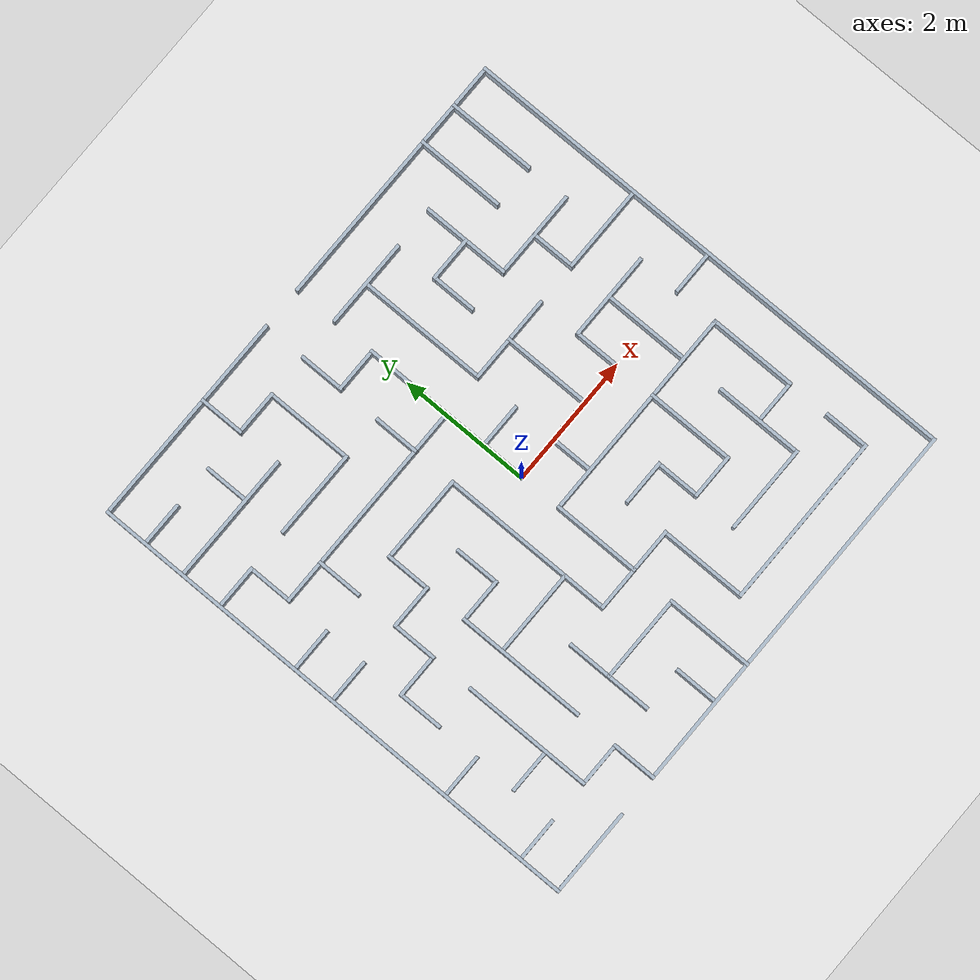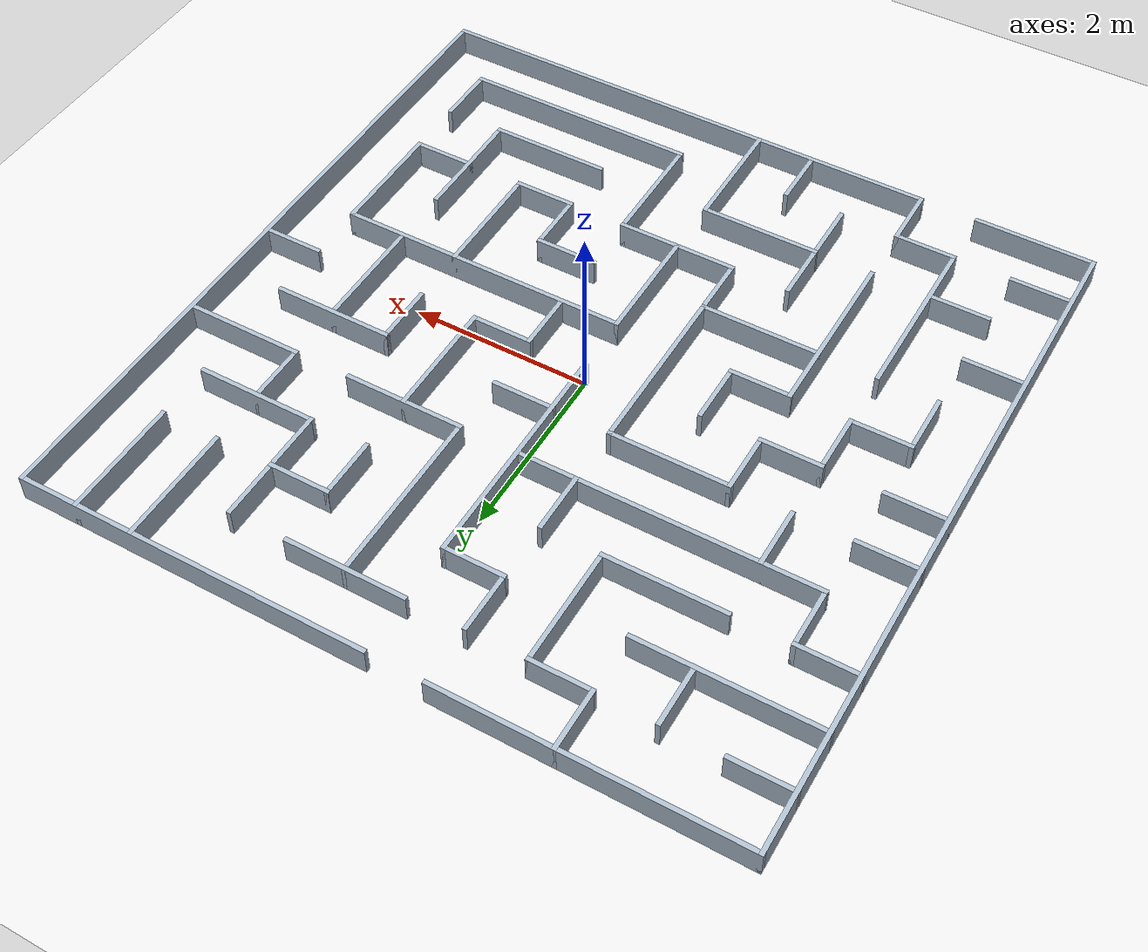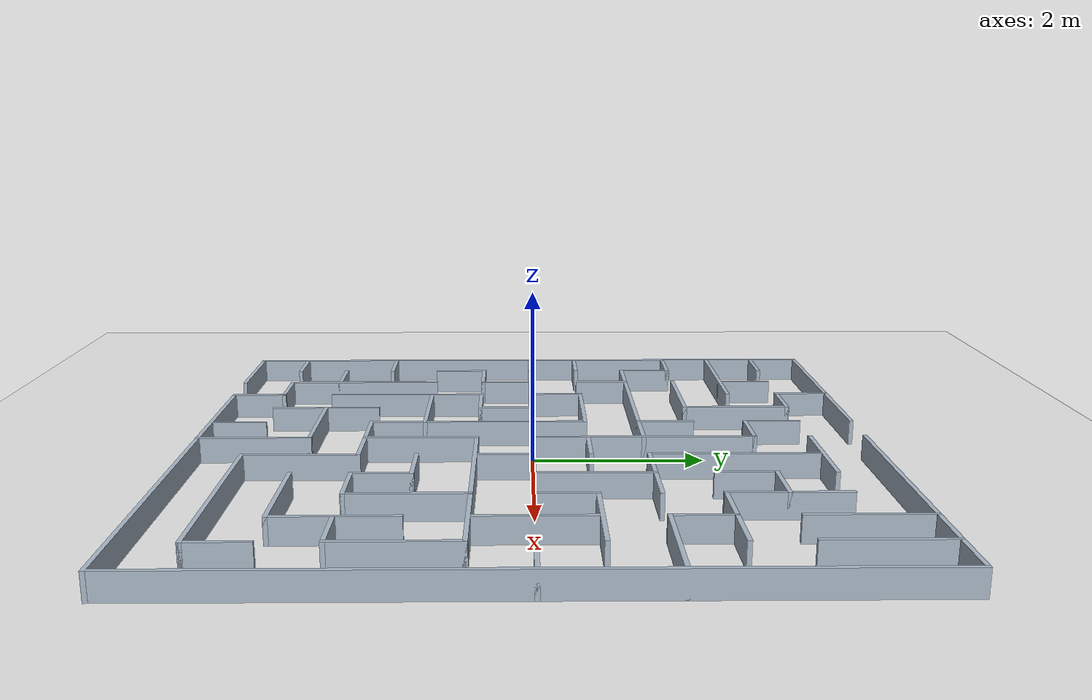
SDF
<sdf version="1.7">
  <world name="default">
    <gui fullscreen="0">
      <camera name="user_camera">
        <pose>0 -9.0 6.5 0 0.625 1.5708</pose>
        <view_controller>orbit</view_controller>
      </camera>
    </gui>
    <spherical_coordinates>
      <surface_model>EARTH_WGS84</surface_model>
      <latitude_deg>0</latitude_deg>
      <longitude_deg>0</longitude_deg>
      <elevation>0</elevation>
      <heading_deg>0</heading_deg>
    </spherical_coordinates>
    <scene>
      <ambient>0.55 0.55 0.55 1</ambient>
      <background>0.75 0.82 0.90 1</background>
      <shadows>1</shadows>
    </scene>
    <light name="sun" type="directional">
      <cast_shadows>1</cast_shadows>
      <pose>0 0 20 0 0 0</pose>
      <diffuse>0.9 0.9 0.9 1</diffuse>
      <specular>0.2 0.2 0.2 1</specular>
      <attenuation>
        <range>100</range>
        <constant>0.9</constant>
        <linear>0.01</linear>
        <quadratic>0.001</quadratic>
      </attenuation>
      <direction>-0.4 0.2 -0.9</direction>
    </light>
    <model name="ground_plane">
      <static>1</static>
      <link name="link">
        <collision name="collision">
          <geometry>
            <plane>
              <normal>0 0 1</normal>
              <size>100 100</size>
            </plane>
          </geometry>
        </collision>
        <visual name="visual">
          <geometry>
            <plane>
              <normal>0 0 1</normal>
              <size>100 100</size>
            </plane>
          </geometry>
          <material>
            <ambient>0.80 0.80 0.80 1</ambient>
            <diffuse>0.92 0.92 0.92 1</diffuse>
          </material>
        </visual>
      </link>
    </model>
    <model name="maze">
      <static>1</static>
      <link name="h_00_00">
        <pose>-2.275000 3.900000 0 0 0 0.000000</pose>
        <collision name="collision">
          <pose>0 0 0.150000 0 0 0</pose>
          <geometry>
            <box>
              <size>3.300000 0.050000 0.300000</size>
            </box>
          </geometry>
        </collision>
        <visual name="visual">
          <pose>0 0 0.150000 0 0 0</pose>
          <geometry>
            <box>
              <size>3.300000 0.050000 0.300000</size>
            </box>
          </geometry>
          <material>
            <ambient>0.50 0.56 0.63 1</ambient>
            <diffuse>0.68 0.74 0.80 1</diffuse>
            <specular>0.05 0.05 0.05 1</specular>
          </material>
        </visual>
      </link>
      <link name="h_00_01">
        <pose>1.950000 3.900000 0 0 0 0.000000</pose>
        <collision name="collision">
          <pose>0 0 0.150000 0 0 0</pose>
          <geometry>
            <box>
              <size>3.950000 0.050000 0.300000</size>
            </box>
          </geometry>
        </collision>
        <visual name="visual">
          <pose>0 0 0.150050 0 0 0</pose>
          <geometry>
            <box>
              <size>3.950000 0.050000 0.300100</size>
            </box>
          </geometry>
          <material>
            <ambient>0.50 0.56 0.63 1</ambient>
            <diffuse>0.68 0.74 0.80 1</diffuse>
            <specular>0.05 0.05 0.05 1</specular>
          </material>
        </visual>
      </link>
      <link name="h_01_00">
        <pose>-3.575000 3.250000 0 0 0 0.000000</pose>
        <collision name="collision">
          <pose>0 0 0.150000 0 0 0</pose>
          <geometry>
            <box>
              <size>0.700000 0.050000 0.300000</size>
            </box>
          </geometry>
        </collision>
        <visual name="visual">
          <pose>0 0 0.150100 0 0 0</pose>
          <geometry>
            <box>
              <size>0.700000 0.050000 0.300200</size>
            </box>
          </geometry>
          <material>
            <ambient>0.50 0.56 0.63 1</ambient>
            <diffuse>0.68 0.74 0.80 1</diffuse>
            <specular>0.05 0.05 0.05 1</specular>
          </material>
        </visual>
      </link>
      <link name="h_01_01">
        <pose>-1.625000 3.250000 0 0 0 0.000000</pose>
        <collision name="collision">
          <pose>0 0 0.150000 0 0 0</pose>
          <geometry>
            <box>
              <size>0.700000 0.050000 0.300000</size>
            </box>
          </geometry>
        </collision>
        <visual name="visual">
          <pose>0 0 0.150150 0 0 0</pose>
          <geometry>
            <box>
              <size>0.700000 0.050000 0.300300</size>
            </box>
          </geometry>
          <material>
            <ambient>0.50 0.56 0.63 1</ambient>
            <diffuse>0.68 0.74 0.80 1</diffuse>
            <specular>0.05 0.05 0.05 1</specular>
          </material>
        </visual>
      </link>
      <link name="h_01_02">
        <pose>0.650000 3.250000 0 0 0 0.000000</pose>
        <collision name="collision">
          <pose>0 0 0.150000 0 0 0</pose>
          <geometry>
            <box>
              <size>1.350000 0.050000 0.300000</size>
            </box>
          </geometry>
        </collision>
        <visual name="visual">
          <pose>0 0 0.150200 0 0 0</pose>
          <geometry>
            <box>
              <size>1.350000 0.050000 0.300400</size>
            </box>
          </geometry>
          <material>
            <ambient>0.50 0.56 0.63 1</ambient>
            <diffuse>0.68 0.74 0.80 1</diffuse>
            <specular>0.05 0.05 0.05 1</specular>
          </material>
        </visual>
      </link>
      <link name="h_02_00">
        <pose>-2.925000 2.600000 0 0 0 0.000000</pose>
        <collision name="collision">
          <pose>0 0 0.150000 0 0 0</pose>
          <geometry>
            <box>
              <size>2.000000 0.050000 0.300000</size>
            </box>
          </geometry>
        </collision>
        <visual name="visual">
          <pose>0 0 0.150250 0 0 0</pose>
          <geometry>
            <box>
              <size>2.000000 0.050000 0.300500</size>
            </box>
          </geometry>
          <material>
            <ambient>0.50 0.56 0.63 1</ambient>
            <diffuse>0.68 0.74 0.80 1</diffuse>
            <specular>0.05 0.05 0.05 1</specular>
          </material>
        </visual>
      </link>
      <link name="h_02_01">
        <pose>-0.325000 2.600000 0 0 0 0.000000</pose>
        <collision name="collision">
          <pose>0 0 0.150000 0 0 0</pose>
          <geometry>
            <box>
              <size>0.700000 0.050000 0.300000</size>
            </box>
          </geometry>
        </collision>
        <visual name="visual">
          <pose>0 0 0.150300 0 0 0</pose>
          <geometry>
            <box>
              <size>0.700000 0.050000 0.300600</size>
            </box>
          </geometry>
          <material>
            <ambient>0.50 0.56 0.63 1</ambient>
            <diffuse>0.68 0.74 0.80 1</diffuse>
            <specular>0.05 0.05 0.05 1</specular>
          </material>
        </visual>
      </link>
      <link name="h_02_02">
        <pose>1.625000 2.600000 0 0 0 0.000000</pose>
        <collision name="collision">
          <pose>0 0 0.150000 0 0 0</pose>
          <geometry>
            <box>
              <size>0.700000 0.050000 0.300000</size>
            </box>
          </geometry>
        </collision>
        <visual name="visual">
          <pose>0 0 0.150350 0 0 0</pose>
          <geometry>
            <box>
              <size>0.700000 0.050000 0.300700</size>
            </box>
          </geometry>
          <material>
            <ambient>0.50 0.56 0.63 1</ambient>
            <diffuse>0.68 0.74 0.80 1</diffuse>
            <specular>0.05 0.05 0.05 1</specular>
          </material>
        </visual>
      </link>
      <link name="h_03_00">
        <pose>-3.575000 1.950000 0 0 0 0.000000</pose>
        <collision name="collision">
          <pose>0 0 0.150000 0 0 0</pose>
          <geometry>
            <box>
              <size>0.700000 0.050000 0.300000</size>
            </box>
          </geometry>
        </collision>
        <visual name="visual">
          <pose>0 0 0.150400 0 0 0</pose>
          <geometry>
            <box>
              <size>0.700000 0.050000 0.300800</size>
            </box>
          </geometry>
          <material>
            <ambient>0.50 0.56 0.63 1</ambient>
            <diffuse>0.68 0.74 0.80 1</diffuse>
            <specular>0.05 0.05 0.05 1</specular>
          </material>
        </visual>
      </link>
      <link name="h_03_01">
        <pose>-1.950000 1.950000 0 0 0 0.000000</pose>
        <collision name="collision">
          <pose>0 0 0.150000 0 0 0</pose>
          <geometry>
            <box>
              <size>1.350000 0.050000 0.300000</size>
            </box>
          </geometry>
        </collision>
        <visual name="visual">
          <pose>0 0 0.150450 0 0 0</pose>
          <geometry>
            <box>
              <size>1.350000 0.050000 0.300900</size>
            </box>
          </geometry>
          <material>
            <ambient>0.50 0.56 0.63 1</ambient>
            <diffuse>0.68 0.74 0.80 1</diffuse>
            <specular>0.05 0.05 0.05 1</specular>
          </material>
        </visual>
      </link>
      <link name="h_03_02">
        <pose>2.600000 1.950000 0 0 0 0.000000</pose>
        <collision name="collision">
          <pose>0 0 0.150000 0 0 0</pose>
          <geometry>
            <box>
              <size>1.350000 0.050000 0.300000</size>
            </box>
          </geometry>
        </collision>
        <visual name="visual">
          <pose>0 0 0.150000 0 0 0</pose>
          <geometry>
            <box>
              <size>1.350000 0.050000 0.300000</size>
            </box>
          </geometry>
          <material>
            <ambient>0.50 0.56 0.63 1</ambient>
            <diffuse>0.68 0.74 0.80 1</diffuse>
            <specular>0.05 0.05 0.05 1</specular>
          </material>
        </visual>
      </link>
      <link name="h_04_00">
        <pose>-1.625000 1.300000 0 0 0 0.000000</pose>
        <collision name="collision">
          <pose>0 0 0.150000 0 0 0</pose>
          <geometry>
            <box>
              <size>3.300000 0.050000 0.300000</size>
            </box>
          </geometry>
        </collision>
        <visual name="visual">
          <pose>0 0 0.150050 0 0 0</pose>
          <geometry>
            <box>
              <size>3.300000 0.050000 0.300100</size>
            </box>
          </geometry>
          <material>
            <ambient>0.50 0.56 0.63 1</ambient>
            <diffuse>0.68 0.74 0.80 1</diffuse>
            <specular>0.05 0.05 0.05 1</specular>
          </material>
        </visual>
      </link>
      <link name="h_04_01">
        <pose>1.300000 1.300000 0 0 0 0.000000</pose>
        <collision name="collision">
          <pose>0 0 0.150000 0 0 0</pose>
          <geometry>
            <box>
              <size>1.350000 0.050000 0.300000</size>
            </box>
          </geometry>
        </collision>
        <visual name="visual">
          <pose>0 0 0.150100 0 0 0</pose>
          <geometry>
            <box>
              <size>1.350000 0.050000 0.300200</size>
            </box>
          </geometry>
          <material>
            <ambient>0.50 0.56 0.63 1</ambient>
            <diffuse>0.68 0.74 0.80 1</diffuse>
            <specular>0.05 0.05 0.05 1</specular>
          </material>
        </visual>
      </link>
      <link name="h_04_02">
        <pose>3.250000 1.300000 0 0 0 0.000000</pose>
        <collision name="collision">
          <pose>0 0 0.150000 0 0 0</pose>
          <geometry>
            <box>
              <size>1.350000 0.050000 0.300000</size>
            </box>
          </geometry>
        </collision>
        <visual name="visual">
          <pose>0 0 0.150150 0 0 0</pose>
          <geometry>
            <box>
              <size>1.350000 0.050000 0.300300</size>
            </box>
          </geometry>
          <material>
            <ambient>0.50 0.56 0.63 1</ambient>
            <diffuse>0.68 0.74 0.80 1</diffuse>
            <specular>0.05 0.05 0.05 1</specular>
          </material>
        </visual>
      </link>
      <link name="h_05_00">
        <pose>-3.575000 0.650000 0 0 0 0.000000</pose>
        <collision name="collision">
          <pose>0 0 0.150000 0 0 0</pose>
          <geometry>
            <box>
              <size>0.700000 0.050000 0.300000</size>
            </box>
          </geometry>
        </collision>
        <visual name="visual">
          <pose>0 0 0.150200 0 0 0</pose>
          <geometry>
            <box>
              <size>0.700000 0.050000 0.300400</size>
            </box>
          </geometry>
          <material>
            <ambient>0.50 0.56 0.63 1</ambient>
            <diffuse>0.68 0.74 0.80 1</diffuse>
            <specular>0.05 0.05 0.05 1</specular>
          </material>
        </visual>
      </link>
      <link name="h_05_01">
        <pose>-1.300000 0.650000 0 0 0 0.000000</pose>
        <collision name="collision">
          <pose>0 0 0.150000 0 0 0</pose>
          <geometry>
            <box>
              <size>1.350000 0.050000 0.300000</size>
            </box>
          </geometry>
        </collision>
        <visual name="visual">
          <pose>0 0 0.150250 0 0 0</pose>
          <geometry>
            <box>
              <size>1.350000 0.050000 0.300500</size>
            </box>
          </geometry>
          <material>
            <ambient>0.50 0.56 0.63 1</ambient>
            <diffuse>0.68 0.74 0.80 1</diffuse>
            <specular>0.05 0.05 0.05 1</specular>
          </material>
        </visual>
      </link>
      <link name="h_05_02">
        <pose>0.325000 0.650000 0 0 0 0.000000</pose>
        <collision name="collision">
          <pose>0 0 0.150000 0 0 0</pose>
          <geometry>
            <box>
              <size>0.700000 0.050000 0.300000</size>
            </box>
          </geometry>
        </collision>
        <visual name="visual">
          <pose>0 0 0.150300 0 0 0</pose>
          <geometry>
            <box>
              <size>0.700000 0.050000 0.300600</size>
            </box>
          </geometry>
          <material>
            <ambient>0.50 0.56 0.63 1</ambient>
            <diffuse>0.68 0.74 0.80 1</diffuse>
            <specular>0.05 0.05 0.05 1</specular>
          </material>
        </visual>
      </link>
      <link name="h_05_03">
        <pose>2.600000 0.650000 0 0 0 0.000000</pose>
        <collision name="collision">
          <pose>0 0 0.150000 0 0 0</pose>
          <geometry>
            <box>
              <size>1.350000 0.050000 0.300000</size>
            </box>
          </geometry>
        </collision>
        <visual name="visual">
          <pose>0 0 0.150350 0 0 0</pose>
          <geometry>
            <box>
              <size>1.350000 0.050000 0.300700</size>
            </box>
          </geometry>
          <material>
            <ambient>0.50 0.56 0.63 1</ambient>
            <diffuse>0.68 0.74 0.80 1</diffuse>
            <specular>0.05 0.05 0.05 1</specular>
          </material>
        </visual>
      </link>
      <link name="h_06_00">
        <pose>-3.575000 0.000000 0 0 0 0.000000</pose>
        <collision name="collision">
          <pose>0 0 0.150000 0 0 0</pose>
          <geometry>
            <box>
              <size>0.700000 0.050000 0.300000</size>
            </box>
          </geometry>
        </collision>
        <visual name="visual">
          <pose>0 0 0.150400 0 0 0</pose>
          <geometry>
            <box>
              <size>0.700000 0.050000 0.300800</size>
            </box>
          </geometry>
          <material>
            <ambient>0.50 0.56 0.63 1</ambient>
            <diffuse>0.68 0.74 0.80 1</diffuse>
            <specular>0.05 0.05 0.05 1</specular>
          </material>
        </visual>
      </link>
      <link name="h_06_01">
        <pose>-2.275000 0.000000 0 0 0 0.000000</pose>
        <collision name="collision">
          <pose>0 0 0.150000 0 0 0</pose>
          <geometry>
            <box>
              <size>0.700000 0.050000 0.300000</size>
            </box>
          </geometry>
        </collision>
        <visual name="visual">
          <pose>0 0 0.150450 0 0 0</pose>
          <geometry>
            <box>
              <size>0.700000 0.050000 0.300900</size>
            </box>
          </geometry>
          <material>
            <ambient>0.50 0.56 0.63 1</ambient>
            <diffuse>0.68 0.74 0.80 1</diffuse>
            <specular>0.05 0.05 0.05 1</specular>
          </material>
        </visual>
      </link>
      <link name="h_06_02">
        <pose>0.975000 0.000000 0 0 0 0.000000</pose>
        <collision name="collision">
          <pose>0 0 0.150000 0 0 0</pose>
          <geometry>
            <box>
              <size>0.700000 0.050000 0.300000</size>
            </box>
          </geometry>
        </collision>
        <visual name="visual">
          <pose>0 0 0.150000 0 0 0</pose>
          <geometry>
            <box>
              <size>0.700000 0.050000 0.300000</size>
            </box>
          </geometry>
          <material>
            <ambient>0.50 0.56 0.63 1</ambient>
            <diffuse>0.68 0.74 0.80 1</diffuse>
            <specular>0.05 0.05 0.05 1</specular>
          </material>
        </visual>
      </link>
      <link name="h_06_03">
        <pose>3.575000 0.000000 0 0 0 0.000000</pose>
        <collision name="collision">
          <pose>0 0 0.150000 0 0 0</pose>
          <geometry>
            <box>
              <size>0.700000 0.050000 0.300000</size>
            </box>
          </geometry>
        </collision>
        <visual name="visual">
          <pose>0 0 0.150050 0 0 0</pose>
          <geometry>
            <box>
              <size>0.700000 0.050000 0.300100</size>
            </box>
          </geometry>
          <material>
            <ambient>0.50 0.56 0.63 1</ambient>
            <diffuse>0.68 0.74 0.80 1</diffuse>
            <specular>0.05 0.05 0.05 1</specular>
          </material>
        </visual>
      </link>
      <link name="h_07_00">
        <pose>-2.925000 -0.650000 0 0 0 0.000000</pose>
        <collision name="collision">
          <pose>0 0 0.150000 0 0 0</pose>
          <geometry>
            <box>
              <size>0.700000 0.050000 0.300000</size>
            </box>
          </geometry>
        </collision>
        <visual name="visual">
          <pose>0 0 0.150100 0 0 0</pose>
          <geometry>
            <box>
              <size>0.700000 0.050000 0.300200</size>
            </box>
          </geometry>
          <material>
            <ambient>0.50 0.56 0.63 1</ambient>
            <diffuse>0.68 0.74 0.80 1</diffuse>
            <specular>0.05 0.05 0.05 1</specular>
          </material>
        </visual>
      </link>
      <link name="h_07_01">
        <pose>-1.625000 -0.650000 0 0 0 0.000000</pose>
        <collision name="collision">
          <pose>0 0 0.150000 0 0 0</pose>
          <geometry>
            <box>
              <size>0.700000 0.050000 0.300000</size>
            </box>
          </geometry>
        </collision>
        <visual name="visual">
          <pose>0 0 0.150150 0 0 0</pose>
          <geometry>
            <box>
              <size>0.700000 0.050000 0.300300</size>
            </box>
          </geometry>
          <material>
            <ambient>0.50 0.56 0.63 1</ambient>
            <diffuse>0.68 0.74 0.80 1</diffuse>
            <specular>0.05 0.05 0.05 1</specular>
          </material>
        </visual>
      </link>
      <link name="h_07_02">
        <pose>1.625000 -0.650000 0 0 0 0.000000</pose>
        <collision name="collision">
          <pose>0 0 0.150000 0 0 0</pose>
          <geometry>
            <box>
              <size>3.300000 0.050000 0.300000</size>
            </box>
          </geometry>
        </collision>
        <visual name="visual">
          <pose>0 0 0.150200 0 0 0</pose>
          <geometry>
            <box>
              <size>3.300000 0.050000 0.300400</size>
            </box>
          </geometry>
          <material>
            <ambient>0.50 0.56 0.63 1</ambient>
            <diffuse>0.68 0.74 0.80 1</diffuse>
            <specular>0.05 0.05 0.05 1</specular>
          </material>
        </visual>
      </link>
      <link name="h_08_00">
        <pose>-1.300000 -1.300000 0 0 0 0.000000</pose>
        <collision name="collision">
          <pose>0 0 0.150000 0 0 0</pose>
          <geometry>
            <box>
              <size>1.350000 0.050000 0.300000</size>
            </box>
          </geometry>
        </collision>
        <visual name="visual">
          <pose>0 0 0.150250 0 0 0</pose>
          <geometry>
            <box>
              <size>1.350000 0.050000 0.300500</size>
            </box>
          </geometry>
          <material>
            <ambient>0.50 0.56 0.63 1</ambient>
            <diffuse>0.68 0.74 0.80 1</diffuse>
            <specular>0.05 0.05 0.05 1</specular>
          </material>
        </visual>
      </link>
      <link name="h_08_01">
        <pose>0.975000 -1.300000 0 0 0 0.000000</pose>
        <collision name="collision">
          <pose>0 0 0.150000 0 0 0</pose>
          <geometry>
            <box>
              <size>0.700000 0.050000 0.300000</size>
            </box>
          </geometry>
        </collision>
        <visual name="visual">
          <pose>0 0 0.150300 0 0 0</pose>
          <geometry>
            <box>
              <size>0.700000 0.050000 0.300600</size>
            </box>
          </geometry>
          <material>
            <ambient>0.50 0.56 0.63 1</ambient>
            <diffuse>0.68 0.74 0.80 1</diffuse>
            <specular>0.05 0.05 0.05 1</specular>
          </material>
        </visual>
      </link>
      <link name="h_09_00">
        <pose>-3.575000 -1.950000 0 0 0 0.000000</pose>
        <collision name="collision">
          <pose>0 0 0.150000 0 0 0</pose>
          <geometry>
            <box>
              <size>0.700000 0.050000 0.300000</size>
            </box>
          </geometry>
        </collision>
        <visual name="visual">
          <pose>0 0 0.150350 0 0 0</pose>
          <geometry>
            <box>
              <size>0.700000 0.050000 0.300700</size>
            </box>
          </geometry>
          <material>
            <ambient>0.50 0.56 0.63 1</ambient>
            <diffuse>0.68 0.74 0.80 1</diffuse>
            <specular>0.05 0.05 0.05 1</specular>
          </material>
        </visual>
      </link>
      <link name="h_09_01">
        <pose>0.000000 -1.950000 0 0 0 0.000000</pose>
        <collision name="collision">
          <pose>0 0 0.150000 0 0 0</pose>
          <geometry>
            <box>
              <size>1.350000 0.050000 0.300000</size>
            </box>
          </geometry>
        </collision>
        <visual name="visual">
          <pose>0 0 0.150400 0 0 0</pose>
          <geometry>
            <box>
              <size>1.350000 0.050000 0.300800</size>
            </box>
          </geometry>
          <material>
            <ambient>0.50 0.56 0.63 1</ambient>
            <diffuse>0.68 0.74 0.80 1</diffuse>
            <specular>0.05 0.05 0.05 1</specular>
          </material>
        </visual>
      </link>
      <link name="h_09_02">
        <pose>1.625000 -1.950000 0 0 0 0.000000</pose>
        <collision name="collision">
          <pose>0 0 0.150000 0 0 0</pose>
          <geometry>
            <box>
              <size>0.700000 0.050000 0.300000</size>
            </box>
          </geometry>
        </collision>
        <visual name="visual">
          <pose>0 0 0.150450 0 0 0</pose>
          <geometry>
            <box>
              <size>0.700000 0.050000 0.300900</size>
            </box>
          </geometry>
          <material>
            <ambient>0.50 0.56 0.63 1</ambient>
            <diffuse>0.68 0.74 0.80 1</diffuse>
            <specular>0.05 0.05 0.05 1</specular>
          </material>
        </visual>
      </link>
      <link name="h_09_03">
        <pose>2.925000 -1.950000 0 0 0 0.000000</pose>
        <collision name="collision">
          <pose>0 0 0.150000 0 0 0</pose>
          <geometry>
            <box>
              <size>0.700000 0.050000 0.300000</size>
            </box>
          </geometry>
        </collision>
        <visual name="visual">
          <pose>0 0 0.150000 0 0 0</pose>
          <geometry>
            <box>
              <size>0.700000 0.050000 0.300000</size>
            </box>
          </geometry>
          <material>
            <ambient>0.50 0.56 0.63 1</ambient>
            <diffuse>0.68 0.74 0.80 1</diffuse>
            <specular>0.05 0.05 0.05 1</specular>
          </material>
        </visual>
      </link>
      <link name="h_10_00">
        <pose>-2.925000 -2.600000 0 0 0 0.000000</pose>
        <collision name="collision">
          <pose>0 0 0.150000 0 0 0</pose>
          <geometry>
            <box>
              <size>0.700000 0.050000 0.300000</size>
            </box>
          </geometry>
        </collision>
        <visual name="visual">
          <pose>0 0 0.150050 0 0 0</pose>
          <geometry>
            <box>
              <size>0.700000 0.050000 0.300100</size>
            </box>
          </geometry>
          <material>
            <ambient>0.50 0.56 0.63 1</ambient>
            <diffuse>0.68 0.74 0.80 1</diffuse>
            <specular>0.05 0.05 0.05 1</specular>
          </material>
        </visual>
      </link>
      <link name="h_10_01">
        <pose>-0.650000 -2.600000 0 0 0 0.000000</pose>
        <collision name="collision">
          <pose>0 0 0.150000 0 0 0</pose>
          <geometry>
            <box>
              <size>1.350000 0.050000 0.300000</size>
            </box>
          </geometry>
        </collision>
        <visual name="visual">
          <pose>0 0 0.150100 0 0 0</pose>
          <geometry>
            <box>
              <size>1.350000 0.050000 0.300200</size>
            </box>
          </geometry>
          <material>
            <ambient>0.50 0.56 0.63 1</ambient>
            <diffuse>0.68 0.74 0.80 1</diffuse>
            <specular>0.05 0.05 0.05 1</specular>
          </material>
        </visual>
      </link>
      <link name="h_10_02">
        <pose>1.950000 -2.600000 0 0 0 0.000000</pose>
        <collision name="collision">
          <pose>0 0 0.150000 0 0 0</pose>
          <geometry>
            <box>
              <size>1.350000 0.050000 0.300000</size>
            </box>
          </geometry>
        </collision>
        <visual name="visual">
          <pose>0 0 0.150150 0 0 0</pose>
          <geometry>
            <box>
              <size>1.350000 0.050000 0.300300</size>
            </box>
          </geometry>
          <material>
            <ambient>0.50 0.56 0.63 1</ambient>
            <diffuse>0.68 0.74 0.80 1</diffuse>
            <specular>0.05 0.05 0.05 1</specular>
          </material>
        </visual>
      </link>
      <link name="h_11_00">
        <pose>-3.575000 -3.250000 0 0 0 0.000000</pose>
        <collision name="collision">
          <pose>0 0 0.150000 0 0 0</pose>
          <geometry>
            <box>
              <size>0.700000 0.050000 0.300000</size>
            </box>
          </geometry>
        </collision>
        <visual name="visual">
          <pose>0 0 0.150200 0 0 0</pose>
          <geometry>
            <box>
              <size>0.700000 0.050000 0.300400</size>
            </box>
          </geometry>
          <material>
            <ambient>0.50 0.56 0.63 1</ambient>
            <diffuse>0.68 0.74 0.80 1</diffuse>
            <specular>0.05 0.05 0.05 1</specular>
          </material>
        </visual>
      </link>
      <link name="h_11_01">
        <pose>-2.275000 -3.250000 0 0 0 0.000000</pose>
        <collision name="collision">
          <pose>0 0 0.150000 0 0 0</pose>
          <geometry>
            <box>
              <size>0.700000 0.050000 0.300000</size>
            </box>
          </geometry>
        </collision>
        <visual name="visual">
          <pose>0 0 0.150250 0 0 0</pose>
          <geometry>
            <box>
              <size>0.700000 0.050000 0.300500</size>
            </box>
          </geometry>
          <material>
            <ambient>0.50 0.56 0.63 1</ambient>
            <diffuse>0.68 0.74 0.80 1</diffuse>
            <specular>0.05 0.05 0.05 1</specular>
          </material>
        </visual>
      </link>
      <link name="h_11_02">
        <pose>1.950000 -3.250000 0 0 0 0.000000</pose>
        <collision name="collision">
          <pose>0 0 0.150000 0 0 0</pose>
          <geometry>
            <box>
              <size>2.650000 0.050000 0.300000</size>
            </box>
          </geometry>
        </collision>
        <visual name="visual">
          <pose>0 0 0.150300 0 0 0</pose>
          <geometry>
            <box>
              <size>2.650000 0.050000 0.300600</size>
            </box>
          </geometry>
          <material>
            <ambient>0.50 0.56 0.63 1</ambient>
            <diffuse>0.68 0.74 0.80 1</diffuse>
            <specular>0.05 0.05 0.05 1</specular>
          </material>
        </visual>
      </link>
      <link name="h_12_00">
        <pose>-3.250000 -3.900000 0 0 0 0.000000</pose>
        <collision name="collision">
          <pose>0 0 0.150000 0 0 0</pose>
          <geometry>
            <box>
              <size>1.350000 0.050000 0.300000</size>
            </box>
          </geometry>
        </collision>
        <visual name="visual">
          <pose>0 0 0.150350 0 0 0</pose>
          <geometry>
            <box>
              <size>1.350000 0.050000 0.300700</size>
            </box>
          </geometry>
          <material>
            <ambient>0.50 0.56 0.63 1</ambient>
            <diffuse>0.68 0.74 0.80 1</diffuse>
            <specular>0.05 0.05 0.05 1</specular>
          </material>
        </visual>
      </link>
      <link name="h_12_01">
        <pose>0.975000 -3.900000 0 0 0 0.000000</pose>
        <collision name="collision">
          <pose>0 0 0.150000 0 0 0</pose>
          <geometry>
            <box>
              <size>5.900000 0.050000 0.300000</size>
            </box>
          </geometry>
        </collision>
        <visual name="visual">
          <pose>0 0 0.150400 0 0 0</pose>
          <geometry>
            <box>
              <size>5.900000 0.050000 0.300800</size>
            </box>
          </geometry>
          <material>
            <ambient>0.50 0.56 0.63 1</ambient>
            <diffuse>0.68 0.74 0.80 1</diffuse>
            <specular>0.05 0.05 0.05 1</specular>
          </material>
        </visual>
      </link>
      <link name="v_00_00">
        <pose>-3.900000 0.000000 0 0 0 1.570796</pose>
        <collision name="collision">
          <pose>0 0 0.150000 0 0 0</pose>
          <geometry>
            <box>
              <size>7.850000 0.050000 0.300000</size>
            </box>
          </geometry>
        </collision>
        <visual name="visual">
          <pose>0 0 0.150450 0 0 0</pose>
          <geometry>
            <box>
              <size>7.850000 0.050000 0.300900</size>
            </box>
          </geometry>
          <material>
            <ambient>0.50 0.56 0.63 1</ambient>
            <diffuse>0.68 0.74 0.80 1</diffuse>
            <specular>0.05 0.05 0.05 1</specular>
          </material>
        </visual>
      </link>
      <link name="v_01_00">
        <pose>-3.250000 1.625000 0 0 0 1.570796</pose>
        <collision name="collision">
          <pose>0 0 0.150000 0 0 0</pose>
          <geometry>
            <box>
              <size>0.700000 0.050000 0.300000</size>
            </box>
          </geometry>
        </collision>
        <visual name="visual">
          <pose>0 0 0.150000 0 0 0</pose>
          <geometry>
            <box>
              <size>0.700000 0.050000 0.300000</size>
            </box>
          </geometry>
          <material>
            <ambient>0.50 0.56 0.63 1</ambient>
            <diffuse>0.68 0.74 0.80 1</diffuse>
            <specular>0.05 0.05 0.05 1</specular>
          </material>
        </visual>
      </link>
      <link name="v_01_01">
        <pose>-3.250000 -0.975000 0 0 0 1.570796</pose>
        <collision name="collision">
          <pose>0 0 0.150000 0 0 0</pose>
          <geometry>
            <box>
              <size>0.700000 0.050000 0.300000</size>
            </box>
          </geometry>
        </collision>
        <visual name="visual">
          <pose>0 0 0.150050 0 0 0</pose>
          <geometry>
            <box>
              <size>0.700000 0.050000 0.300100</size>
            </box>
          </geometry>
          <material>
            <ambient>0.50 0.56 0.63 1</ambient>
            <diffuse>0.68 0.74 0.80 1</diffuse>
            <specular>0.05 0.05 0.05 1</specular>
          </material>
        </visual>
      </link>
      <link name="v_02_00">
        <pose>-2.600000 2.925000 0 0 0 1.570796</pose>
        <collision name="collision">
          <pose>0 0 0.150000 0 0 0</pose>
          <geometry>
            <box>
              <size>0.700000 0.050000 0.300000</size>
            </box>
          </geometry>
        </collision>
        <visual name="visual">
          <pose>0 0 0.150100 0 0 0</pose>
          <geometry>
            <box>
              <size>0.700000 0.050000 0.300200</size>
            </box>
          </geometry>
          <material>
            <ambient>0.50 0.56 0.63 1</ambient>
            <diffuse>0.68 0.74 0.80 1</diffuse>
            <specular>0.05 0.05 0.05 1</specular>
          </material>
        </visual>
      </link>
      <link name="v_02_01">
        <pose>-2.600000 0.975000 0 0 0 1.570796</pose>
        <collision name="collision">
          <pose>0 0 0.150000 0 0 0</pose>
          <geometry>
            <box>
              <size>0.700000 0.050000 0.300000</size>
            </box>
          </geometry>
        </collision>
        <visual name="visual">
          <pose>0 0 0.150150 0 0 0</pose>
          <geometry>
            <box>
              <size>0.700000 0.050000 0.300300</size>
            </box>
          </geometry>
          <material>
            <ambient>0.50 0.56 0.63 1</ambient>
            <diffuse>0.68 0.74 0.80 1</diffuse>
            <specular>0.05 0.05 0.05 1</specular>
          </material>
        </visual>
      </link>
      <link name="v_02_02">
        <pose>-2.600000 -0.325000 0 0 0 1.570796</pose>
        <collision name="collision">
          <pose>0 0 0.150000 0 0 0</pose>
          <geometry>
            <box>
              <size>0.700000 0.050000 0.300000</size>
            </box>
          </geometry>
        </collision>
        <visual name="visual">
          <pose>0 0 0.150200 0 0 0</pose>
          <geometry>
            <box>
              <size>0.700000 0.050000 0.300400</size>
            </box>
          </geometry>
          <material>
            <ambient>0.50 0.56 0.63 1</ambient>
            <diffuse>0.68 0.74 0.80 1</diffuse>
            <specular>0.05 0.05 0.05 1</specular>
          </material>
        </visual>
      </link>
      <link name="v_02_03">
        <pose>-2.600000 -2.275000 0 0 0 1.570796</pose>
        <collision name="collision">
          <pose>0 0 0.150000 0 0 0</pose>
          <geometry>
            <box>
              <size>2.000000 0.050000 0.300000</size>
            </box>
          </geometry>
        </collision>
        <visual name="visual">
          <pose>0 0 0.150250 0 0 0</pose>
          <geometry>
            <box>
              <size>2.000000 0.050000 0.300500</size>
            </box>
          </geometry>
          <material>
            <ambient>0.50 0.56 0.63 1</ambient>
            <diffuse>0.68 0.74 0.80 1</diffuse>
            <specular>0.05 0.05 0.05 1</specular>
          </material>
        </visual>
      </link>
      <link name="v_03_00">
        <pose>-1.950000 3.575000 0 0 0 1.570796</pose>
        <collision name="collision">
          <pose>0 0 0.150000 0 0 0</pose>
          <geometry>
            <box>
              <size>0.700000 0.050000 0.300000</size>
            </box>
          </geometry>
        </collision>
        <visual name="visual">
          <pose>0 0 0.150300 0 0 0</pose>
          <geometry>
            <box>
              <size>0.700000 0.050000 0.300600</size>
            </box>
          </geometry>
          <material>
            <ambient>0.50 0.56 0.63 1</ambient>
            <diffuse>0.68 0.74 0.80 1</diffuse>
            <specular>0.05 0.05 0.05 1</specular>
          </material>
        </visual>
      </link>
      <link name="v_03_01">
        <pose>-1.950000 0.325000 0 0 0 1.570796</pose>
        <collision name="collision">
          <pose>0 0 0.150000 0 0 0</pose>
          <geometry>
            <box>
              <size>0.700000 0.050000 0.300000</size>
            </box>
          </geometry>
        </collision>
        <visual name="visual">
          <pose>0 0 0.150350 0 0 0</pose>
          <geometry>
            <box>
              <size>0.700000 0.050000 0.300700</size>
            </box>
          </geometry>
          <material>
            <ambient>0.50 0.56 0.63 1</ambient>
            <diffuse>0.68 0.74 0.80 1</diffuse>
            <specular>0.05 0.05 0.05 1</specular>
          </material>
        </visual>
      </link>
      <link name="v_03_02">
        <pose>-1.950000 -1.625000 0 0 0 1.570796</pose>
        <collision name="collision">
          <pose>0 0 0.150000 0 0 0</pose>
          <geometry>
            <box>
              <size>2.000000 0.050000 0.300000</size>
            </box>
          </geometry>
        </collision>
        <visual name="visual">
          <pose>0 0 0.150400 0 0 0</pose>
          <geometry>
            <box>
              <size>2.000000 0.050000 0.300800</size>
            </box>
          </geometry>
          <material>
            <ambient>0.50 0.56 0.63 1</ambient>
            <diffuse>0.68 0.74 0.80 1</diffuse>
            <specular>0.05 0.05 0.05 1</specular>
          </material>
        </visual>
      </link>
      <link name="v_03_03">
        <pose>-1.950000 -3.575000 0 0 0 1.570796</pose>
        <collision name="collision">
          <pose>0 0 0.150000 0 0 0</pose>
          <geometry>
            <box>
              <size>0.700000 0.050000 0.300000</size>
            </box>
          </geometry>
        </collision>
        <visual name="visual">
          <pose>0 0 0.150450 0 0 0</pose>
          <geometry>
            <box>
              <size>0.700000 0.050000 0.300900</size>
            </box>
          </geometry>
          <material>
            <ambient>0.50 0.56 0.63 1</ambient>
            <diffuse>0.68 0.74 0.80 1</diffuse>
            <specular>0.05 0.05 0.05 1</specular>
          </material>
        </visual>
      </link>
      <link name="v_04_00">
        <pose>-1.300000 2.600000 0 0 0 1.570796</pose>
        <collision name="collision">
          <pose>0 0 0.150000 0 0 0</pose>
          <geometry>
            <box>
              <size>1.350000 0.050000 0.300000</size>
            </box>
          </geometry>
        </collision>
        <visual name="visual">
          <pose>0 0 0.150000 0 0 0</pose>
          <geometry>
            <box>
              <size>1.350000 0.050000 0.300000</size>
            </box>
          </geometry>
          <material>
            <ambient>0.50 0.56 0.63 1</ambient>
            <diffuse>0.68 0.74 0.80 1</diffuse>
            <specular>0.05 0.05 0.05 1</specular>
          </material>
        </visual>
      </link>
      <link name="v_04_01">
        <pose>-1.300000 -0.325000 0 0 0 1.570796</pose>
        <collision name="collision">
          <pose>0 0 0.150000 0 0 0</pose>
          <geometry>
            <box>
              <size>0.700000 0.050000 0.300000</size>
            </box>
          </geometry>
        </collision>
        <visual name="visual">
          <pose>0 0 0.150050 0 0 0</pose>
          <geometry>
            <box>
              <size>0.700000 0.050000 0.300100</size>
            </box>
          </geometry>
          <material>
            <ambient>0.50 0.56 0.63 1</ambient>
            <diffuse>0.68 0.74 0.80 1</diffuse>
            <specular>0.05 0.05 0.05 1</specular>
          </material>
        </visual>
      </link>
      <link name="v_04_02">
        <pose>-1.300000 -2.600000 0 0 0 1.570796</pose>
        <collision name="collision">
          <pose>0 0 0.150000 0 0 0</pose>
          <geometry>
            <box>
              <size>1.350000 0.050000 0.300000</size>
            </box>
          </geometry>
        </collision>
        <visual name="visual">
          <pose>0 0 0.150100 0 0 0</pose>
          <geometry>
            <box>
              <size>1.350000 0.050000 0.300200</size>
            </box>
          </geometry>
          <material>
            <ambient>0.50 0.56 0.63 1</ambient>
            <diffuse>0.68 0.74 0.80 1</diffuse>
            <specular>0.05 0.05 0.05 1</specular>
          </material>
        </visual>
      </link>
      <link name="v_05_00">
        <pose>-0.650000 2.925000 0 0 0 1.570796</pose>
        <collision name="collision">
          <pose>0 0 0.150000 0 0 0</pose>
          <geometry>
            <box>
              <size>0.700000 0.050000 0.300000</size>
            </box>
          </geometry>
        </collision>
        <visual name="visual">
          <pose>0 0 0.150150 0 0 0</pose>
          <geometry>
            <box>
              <size>0.700000 0.050000 0.300300</size>
            </box>
          </geometry>
          <material>
            <ambient>0.50 0.56 0.63 1</ambient>
            <diffuse>0.68 0.74 0.80 1</diffuse>
            <specular>0.05 0.05 0.05 1</specular>
          </material>
        </visual>
      </link>
      <link name="v_05_01">
        <pose>-0.650000 1.625000 0 0 0 1.570796</pose>
        <collision name="collision">
          <pose>0 0 0.150000 0 0 0</pose>
          <geometry>
            <box>
              <size>0.700000 0.050000 0.300000</size>
            </box>
          </geometry>
        </collision>
        <visual name="visual">
          <pose>0 0 0.150200 0 0 0</pose>
          <geometry>
            <box>
              <size>0.700000 0.050000 0.300400</size>
            </box>
          </geometry>
          <material>
            <ambient>0.50 0.56 0.63 1</ambient>
            <diffuse>0.68 0.74 0.80 1</diffuse>
            <specular>0.05 0.05 0.05 1</specular>
          </material>
        </visual>
      </link>
      <link name="v_05_02">
        <pose>-0.650000 -0.650000 0 0 0 1.570796</pose>
        <collision name="collision">
          <pose>0 0 0.150000 0 0 0</pose>
          <geometry>
            <box>
              <size>2.650000 0.050000 0.300000</size>
            </box>
          </geometry>
        </collision>
        <visual name="visual">
          <pose>0 0 0.150250 0 0 0</pose>
          <geometry>
            <box>
              <size>2.650000 0.050000 0.300500</size>
            </box>
          </geometry>
          <material>
            <ambient>0.50 0.56 0.63 1</ambient>
            <diffuse>0.68 0.74 0.80 1</diffuse>
            <specular>0.05 0.05 0.05 1</specular>
          </material>
        </visual>
      </link>
      <link name="v_05_03">
        <pose>-0.650000 -3.575000 0 0 0 1.570796</pose>
        <collision name="collision">
          <pose>0 0 0.150000 0 0 0</pose>
          <geometry>
            <box>
              <size>0.700000 0.050000 0.300000</size>
            </box>
          </geometry>
        </collision>
        <visual name="visual">
          <pose>0 0 0.150300 0 0 0</pose>
          <geometry>
            <box>
              <size>0.700000 0.050000 0.300600</size>
            </box>
          </geometry>
          <material>
            <ambient>0.50 0.56 0.63 1</ambient>
            <diffuse>0.68 0.74 0.80 1</diffuse>
            <specular>0.05 0.05 0.05 1</specular>
          </material>
        </visual>
      </link>
      <link name="v_06_00">
        <pose>0.000000 1.300000 0 0 0 1.570796</pose>
        <collision name="collision">
          <pose>0 0 0.150000 0 0 0</pose>
          <geometry>
            <box>
              <size>2.650000 0.050000 0.300000</size>
            </box>
          </geometry>
        </collision>
        <visual name="visual">
          <pose>0 0 0.150350 0 0 0</pose>
          <geometry>
            <box>
              <size>2.650000 0.050000 0.300700</size>
            </box>
          </geometry>
          <material>
            <ambient>0.50 0.56 0.63 1</ambient>
            <diffuse>0.68 0.74 0.80 1</diffuse>
            <specular>0.05 0.05 0.05 1</specular>
          </material>
        </visual>
      </link>
      <link name="v_06_01">
        <pose>0.000000 -1.300000 0 0 0 1.570796</pose>
        <collision name="collision">
          <pose>0 0 0.150000 0 0 0</pose>
          <geometry>
            <box>
              <size>1.350000 0.050000 0.300000</size>
            </box>
          </geometry>
        </collision>
        <visual name="visual">
          <pose>0 0 0.150400 0 0 0</pose>
          <geometry>
            <box>
              <size>1.350000 0.050000 0.300800</size>
            </box>
          </geometry>
          <material>
            <ambient>0.50 0.56 0.63 1</ambient>
            <diffuse>0.68 0.74 0.80 1</diffuse>
            <specular>0.05 0.05 0.05 1</specular>
          </material>
        </visual>
      </link>
      <link name="v_06_02">
        <pose>0.000000 -3.250000 0 0 0 1.570796</pose>
        <collision name="collision">
          <pose>0 0 0.150000 0 0 0</pose>
          <geometry>
            <box>
              <size>1.350000 0.050000 0.300000</size>
            </box>
          </geometry>
        </collision>
        <visual name="visual">
          <pose>0 0 0.150450 0 0 0</pose>
          <geometry>
            <box>
              <size>1.350000 0.050000 0.300900</size>
            </box>
          </geometry>
          <material>
            <ambient>0.50 0.56 0.63 1</ambient>
            <diffuse>0.68 0.74 0.80 1</diffuse>
            <specular>0.05 0.05 0.05 1</specular>
          </material>
        </visual>
      </link>
      <link name="v_07_00">
        <pose>0.650000 2.275000 0 0 0 1.570796</pose>
        <collision name="collision">
          <pose>0 0 0.150000 0 0 0</pose>
          <geometry>
            <box>
              <size>2.000000 0.050000 0.300000</size>
            </box>
          </geometry>
        </collision>
        <visual name="visual">
          <pose>0 0 0.150000 0 0 0</pose>
          <geometry>
            <box>
              <size>2.000000 0.050000 0.300000</size>
            </box>
          </geometry>
          <material>
            <ambient>0.50 0.56 0.63 1</ambient>
            <diffuse>0.68 0.74 0.80 1</diffuse>
            <specular>0.05 0.05 0.05 1</specular>
          </material>
        </visual>
      </link>
      <link name="v_07_01">
        <pose>0.650000 -0.325000 0 0 0 1.570796</pose>
        <collision name="collision">
          <pose>0 0 0.150000 0 0 0</pose>
          <geometry>
            <box>
              <size>0.700000 0.050000 0.300000</size>
            </box>
          </geometry>
        </collision>
        <visual name="visual">
          <pose>0 0 0.150050 0 0 0</pose>
          <geometry>
            <box>
              <size>0.700000 0.050000 0.300100</size>
            </box>
          </geometry>
          <material>
            <ambient>0.50 0.56 0.63 1</ambient>
            <diffuse>0.68 0.74 0.80 1</diffuse>
            <specular>0.05 0.05 0.05 1</specular>
          </material>
        </visual>
      </link>
      <link name="v_07_02">
        <pose>0.650000 -2.600000 0 0 0 1.570796</pose>
        <collision name="collision">
          <pose>0 0 0.150000 0 0 0</pose>
          <geometry>
            <box>
              <size>1.350000 0.050000 0.300000</size>
            </box>
          </geometry>
        </collision>
        <visual name="visual">
          <pose>0 0 0.150100 0 0 0</pose>
          <geometry>
            <box>
              <size>1.350000 0.050000 0.300200</size>
            </box>
          </geometry>
          <material>
            <ambient>0.50 0.56 0.63 1</ambient>
            <diffuse>0.68 0.74 0.80 1</diffuse>
            <specular>0.05 0.05 0.05 1</specular>
          </material>
        </visual>
      </link>
      <link name="v_08_00">
        <pose>1.300000 2.275000 0 0 0 1.570796</pose>
        <collision name="collision">
          <pose>0 0 0.150000 0 0 0</pose>
          <geometry>
            <box>
              <size>0.700000 0.050000 0.300000</size>
            </box>
          </geometry>
        </collision>
        <visual name="visual">
          <pose>0 0 0.150150 0 0 0</pose>
          <geometry>
            <box>
              <size>0.700000 0.050000 0.300300</size>
            </box>
          </geometry>
          <material>
            <ambient>0.50 0.56 0.63 1</ambient>
            <diffuse>0.68 0.74 0.80 1</diffuse>
            <specular>0.05 0.05 0.05 1</specular>
          </material>
        </visual>
      </link>
      <link name="v_08_01">
        <pose>1.300000 0.650000 0 0 0 1.570796</pose>
        <collision name="collision">
          <pose>0 0 0.150000 0 0 0</pose>
          <geometry>
            <box>
              <size>1.350000 0.050000 0.300000</size>
            </box>
          </geometry>
        </collision>
        <visual name="visual">
          <pose>0 0 0.150200 0 0 0</pose>
          <geometry>
            <box>
              <size>1.350000 0.050000 0.300400</size>
            </box>
          </geometry>
          <material>
            <ambient>0.50 0.56 0.63 1</ambient>
            <diffuse>0.68 0.74 0.80 1</diffuse>
            <specular>0.05 0.05 0.05 1</specular>
          </material>
        </visual>
      </link>
      <link name="v_08_02">
        <pose>1.300000 -1.625000 0 0 0 1.570796</pose>
        <collision name="collision">
          <pose>0 0 0.150000 0 0 0</pose>
          <geometry>
            <box>
              <size>0.700000 0.050000 0.300000</size>
            </box>
          </geometry>
        </collision>
        <visual name="visual">
          <pose>0 0 0.150250 0 0 0</pose>
          <geometry>
            <box>
              <size>0.700000 0.050000 0.300500</size>
            </box>
          </geometry>
          <material>
            <ambient>0.50 0.56 0.63 1</ambient>
            <diffuse>0.68 0.74 0.80 1</diffuse>
            <specular>0.05 0.05 0.05 1</specular>
          </material>
        </visual>
      </link>
      <link name="v_09_00">
        <pose>1.950000 2.600000 0 0 0 1.570796</pose>
        <collision name="collision">
          <pose>0 0 0.150000 0 0 0</pose>
          <geometry>
            <box>
              <size>1.350000 0.050000 0.300000</size>
            </box>
          </geometry>
        </collision>
        <visual name="visual">
          <pose>0 0 0.150300 0 0 0</pose>
          <geometry>
            <box>
              <size>1.350000 0.050000 0.300600</size>
            </box>
          </geometry>
          <material>
            <ambient>0.50 0.56 0.63 1</ambient>
            <diffuse>0.68 0.74 0.80 1</diffuse>
            <specular>0.05 0.05 0.05 1</specular>
          </material>
        </visual>
      </link>
      <link name="v_09_01">
        <pose>1.950000 0.325000 0 0 0 1.570796</pose>
        <collision name="collision">
          <pose>0 0 0.150000 0 0 0</pose>
          <geometry>
            <box>
              <size>0.700000 0.050000 0.300000</size>
            </box>
          </geometry>
        </collision>
        <visual name="visual">
          <pose>0 0 0.150350 0 0 0</pose>
          <geometry>
            <box>
              <size>0.700000 0.050000 0.300700</size>
            </box>
          </geometry>
          <material>
            <ambient>0.50 0.56 0.63 1</ambient>
            <diffuse>0.68 0.74 0.80 1</diffuse>
            <specular>0.05 0.05 0.05 1</specular>
          </material>
        </visual>
      </link>
      <link name="v_09_02">
        <pose>1.950000 -1.300000 0 0 0 1.570796</pose>
        <collision name="collision">
          <pose>0 0 0.150000 0 0 0</pose>
          <geometry>
            <box>
              <size>1.350000 0.050000 0.300000</size>
            </box>
          </geometry>
        </collision>
        <visual name="visual">
          <pose>0 0 0.150400 0 0 0</pose>
          <geometry>
            <box>
              <size>1.350000 0.050000 0.300800</size>
            </box>
          </geometry>
          <material>
            <ambient>0.50 0.56 0.63 1</ambient>
            <diffuse>0.68 0.74 0.80 1</diffuse>
            <specular>0.05 0.05 0.05 1</specular>
          </material>
        </visual>
      </link>
      <link name="v_10_00">
        <pose>2.600000 3.250000 0 0 0 1.570796</pose>
        <collision name="collision">
          <pose>0 0 0.150000 0 0 0</pose>
          <geometry>
            <box>
              <size>1.350000 0.050000 0.300000</size>
            </box>
          </geometry>
        </collision>
        <visual name="visual">
          <pose>0 0 0.150450 0 0 0</pose>
          <geometry>
            <box>
              <size>1.350000 0.050000 0.300900</size>
            </box>
          </geometry>
          <material>
            <ambient>0.50 0.56 0.63 1</ambient>
            <diffuse>0.68 0.74 0.80 1</diffuse>
            <specular>0.05 0.05 0.05 1</specular>
          </material>
        </visual>
      </link>
      <link name="v_10_01">
        <pose>2.600000 1.625000 0 0 0 1.570796</pose>
        <collision name="collision">
          <pose>0 0 0.150000 0 0 0</pose>
          <geometry>
            <box>
              <size>0.700000 0.050000 0.300000</size>
            </box>
          </geometry>
        </collision>
        <visual name="visual">
          <pose>0 0 0.150000 0 0 0</pose>
          <geometry>
            <box>
              <size>0.700000 0.050000 0.300000</size>
            </box>
          </geometry>
          <material>
            <ambient>0.50 0.56 0.63 1</ambient>
            <diffuse>0.68 0.74 0.80 1</diffuse>
            <specular>0.05 0.05 0.05 1</specular>
          </material>
        </visual>
      </link>
      <link name="v_10_02">
        <pose>2.600000 0.000000 0 0 0 1.570796</pose>
        <collision name="collision">
          <pose>0 0 0.150000 0 0 0</pose>
          <geometry>
            <box>
              <size>1.350000 0.050000 0.300000</size>
            </box>
          </geometry>
        </collision>
        <visual name="visual">
          <pose>0 0 0.150050 0 0 0</pose>
          <geometry>
            <box>
              <size>1.350000 0.050000 0.300100</size>
            </box>
          </geometry>
          <material>
            <ambient>0.50 0.56 0.63 1</ambient>
            <diffuse>0.68 0.74 0.80 1</diffuse>
            <specular>0.05 0.05 0.05 1</specular>
          </material>
        </visual>
      </link>
      <link name="v_10_03">
        <pose>2.600000 -1.950000 0 0 0 1.570796</pose>
        <collision name="collision">
          <pose>0 0 0.150000 0 0 0</pose>
          <geometry>
            <box>
              <size>1.350000 0.050000 0.300000</size>
            </box>
          </geometry>
        </collision>
        <visual name="visual">
          <pose>0 0 0.150100 0 0 0</pose>
          <geometry>
            <box>
              <size>1.350000 0.050000 0.300200</size>
            </box>
          </geometry>
          <material>
            <ambient>0.50 0.56 0.63 1</ambient>
            <diffuse>0.68 0.74 0.80 1</diffuse>
            <specular>0.05 0.05 0.05 1</specular>
          </material>
        </visual>
      </link>
      <link name="v_11_00">
        <pose>3.250000 3.250000 0 0 0 1.570796</pose>
        <collision name="collision">
          <pose>0 0 0.150000 0 0 0</pose>
          <geometry>
            <box>
              <size>1.350000 0.050000 0.300000</size>
            </box>
          </geometry>
        </collision>
        <visual name="visual">
          <pose>0 0 0.150150 0 0 0</pose>
          <geometry>
            <box>
              <size>1.350000 0.050000 0.300300</size>
            </box>
          </geometry>
          <material>
            <ambient>0.50 0.56 0.63 1</ambient>
            <diffuse>0.68 0.74 0.80 1</diffuse>
            <specular>0.05 0.05 0.05 1</specular>
          </material>
        </visual>
      </link>
      <link name="v_11_01">
        <pose>3.250000 -1.300000 0 0 0 1.570796</pose>
        <collision name="collision">
          <pose>0 0 0.150000 0 0 0</pose>
          <geometry>
            <box>
              <size>1.350000 0.050000 0.300000</size>
            </box>
          </geometry>
        </collision>
        <visual name="visual">
          <pose>0 0 0.150200 0 0 0</pose>
          <geometry>
            <box>
              <size>1.350000 0.050000 0.300400</size>
            </box>
          </geometry>
          <material>
            <ambient>0.50 0.56 0.63 1</ambient>
            <diffuse>0.68 0.74 0.80 1</diffuse>
            <specular>0.05 0.05 0.05 1</specular>
          </material>
        </visual>
      </link>
      <link name="v_11_02">
        <pose>3.250000 -2.925000 0 0 0 1.570796</pose>
        <collision name="collision">
          <pose>0 0 0.150000 0 0 0</pose>
          <geometry>
            <box>
              <size>0.700000 0.050000 0.300000</size>
            </box>
          </geometry>
        </collision>
        <visual name="visual">
          <pose>0 0 0.150250 0 0 0</pose>
          <geometry>
            <box>
              <size>0.700000 0.050000 0.300500</size>
            </box>
          </geometry>
          <material>
            <ambient>0.50 0.56 0.63 1</ambient>
            <diffuse>0.68 0.74 0.80 1</diffuse>
            <specular>0.05 0.05 0.05 1</specular>
          </material>
        </visual>
      </link>
      <link name="v_12_00">
        <pose>3.900000 0.000000 0 0 0 1.570796</pose>
        <collision name="collision">
          <pose>0 0 0.150000 0 0 0</pose>
          <geometry>
            <box>
              <size>7.850000 0.050000 0.300000</size>
            </box>
          </geometry>
        </collision>
        <visual name="visual">
          <pose>0 0 0.150300 0 0 0</pose>
          <geometry>
            <box>
              <size>7.850000 0.050000 0.300600</size>
            </box>
          </geometry>
          <material>
            <ambient>0.50 0.56 0.63 1</ambient>
            <diffuse>0.68 0.74 0.80 1</diffuse>
            <specular>0.05 0.05 0.05 1</specular>
          </material>
        </visual>
      </link>
    </model>
  </world>
</sdf>
